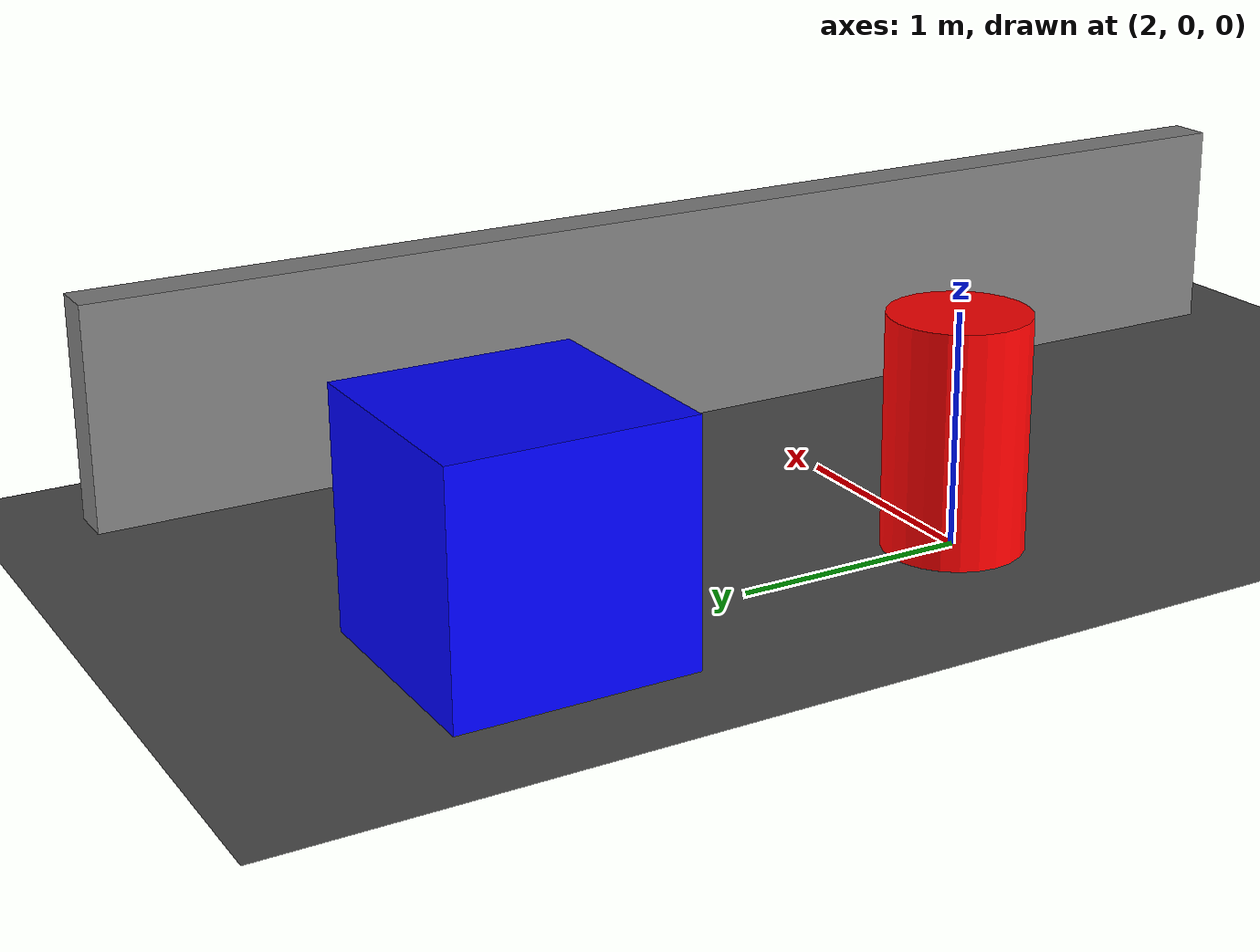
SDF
<?xml version="1.0" ?>
<sdf version="1.8">
  <world name="obstacle_world">

    <plugin
      filename="libgz-sim-physics-system.so"
      name="gz::sim::systems::Physics">
    </plugin>
    <plugin
      filename="libgz-sim-user-commands-system.so"
      name="gz::sim::systems::UserCommands">
    </plugin>
    <plugin
      filename="libgz-sim-scene-broadcaster-system.so"
      name="gz::sim::systems::SceneBroadcaster">
    </plugin>
    <plugin
      filename="libgz-sim-sensors-system.so"
      name="gz::sim::systems::Sensors">
      <render_engine>ogre</render_engine>
    </plugin>

    <light type="directional" name="sun">
      <cast_shadows>true</cast_shadows>
      <pose>0 0 10 0 0 0</pose>
      <diffuse>0.8 0.8 0.8 1</diffuse>
      <specular>0.2 0.2 0.2 1</specular>
      <attenuation>
        <range>1000</range>
        <constant>0.9</constant>
        <linear>0.01</linear>
        <quadratic>0.001</quadratic>
      </attenuation>
      <direction>-0.5 0.1 -0.9</direction>
    </light>

    <model name="ground_plane">
      <static>true</static>
      <link name="link">
        <collision name="collision">
          <geometry>
            <plane>
              <normal>0 0 1</normal>
              <size>100 100</size>
            </plane>
          </geometry>
        </collision>
        <visual name="visual">
          <geometry>
            <plane>
              <normal>0 0 1</normal>
              <size>100 100</size>
            </plane>
          </geometry>
          <material>
            <ambient>0.3 0.3 0.3 1</ambient>
            <diffuse>0.3 0.3 0.3 1</diffuse>
            <specular>0.3 0.3 0.3 1</specular>
          </material>
        </visual>
      </link>
    </model>

    <model name="cylinder_obstacle_1">
      <pose>2 0 0.5 0 0 0</pose>
      <static>true</static>
      <link name="link">
        <collision name="collision">
          <geometry>
            <cylinder>
              <radius>0.3</radius>
              <length>1.0</length>
            </cylinder>
          </geometry>
        </collision>
        <visual name="visual">
          <geometry>
            <cylinder>
              <radius>0.3</radius>
              <length>1.0</length>
            </cylinder>
          </geometry>
          <material>
            <ambient>1 0 0 1</ambient>
            <diffuse>1 0 0 1</diffuse>
            <specular>0.5 0.5 0.5 1</specular>
          </material>
        </visual>
      </link>
    </model>

    <model name="box_obstacle_1">
      <pose>2 2 0.5 0 0 0</pose>
      <static>true</static>
      <link name="link">
        <collision name="collision">
          <geometry>
            <box>
              <size>1 1 1</size>
            </box>
          </geometry>
        </collision>
        <visual name="visual">
          <geometry>
            <box>
              <size>1 1 1</size>
            </box>
          </geometry>
          <material>
            <ambient>0 0 1 1</ambient>
            <diffuse>0 0 1 1</diffuse>
            <specular>0.5 0.5 0.5 1</specular>
          </material>
        </visual>
      </link>
    </model>

    <model name="wall_1">
      <pose>4 0 0.5 0 0 1.57</pose>
      <static>true</static>
      <link name="link">
        <collision name="collision">
          <geometry>
            <box>
              <size>6 0.2 1</size>
            </box>
          </geometry>
        </collision>
        <visual name="visual">
          <geometry>
            <box>
              <size>6 0.2 1</size>
            </box>
          </geometry>
          <material>
            <ambient>0.5 0.5 0.5 1</ambient>
            <diffuse>0.5 0.5 0.5 1</diffuse>
            <specular>0.5 0.5 0.5 1</specular>
          </material>
        </visual>
      </link>
    </model>

  </world>
</sdf>
